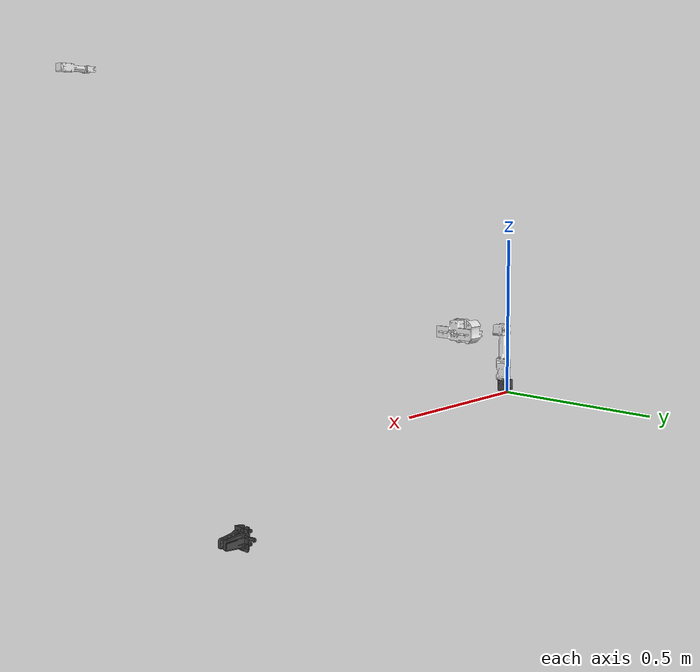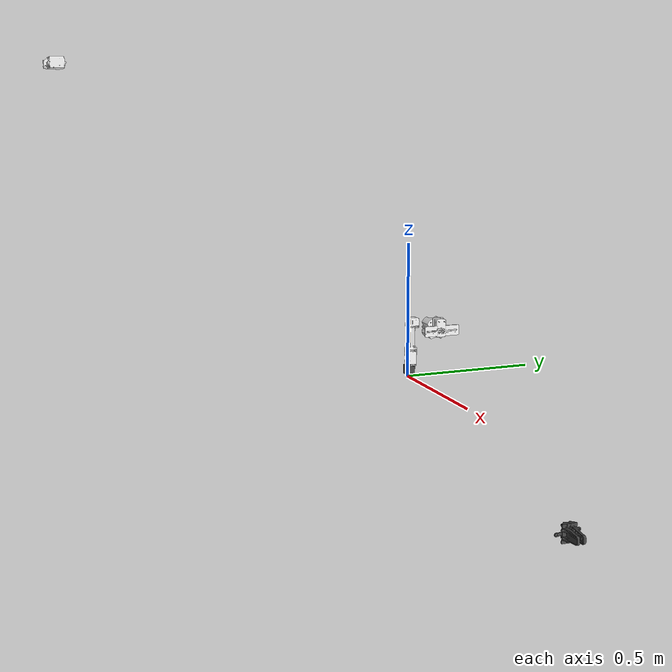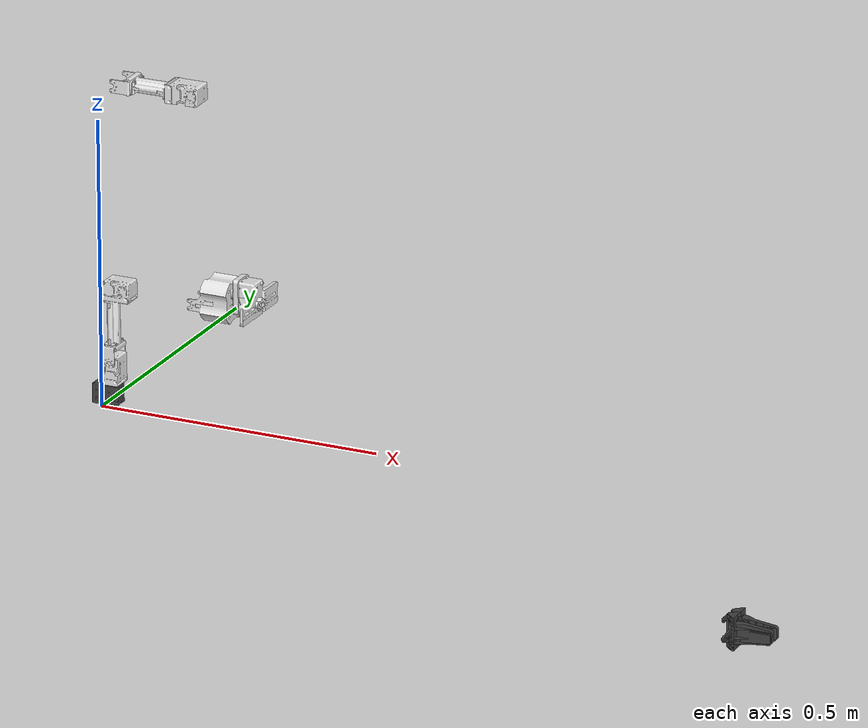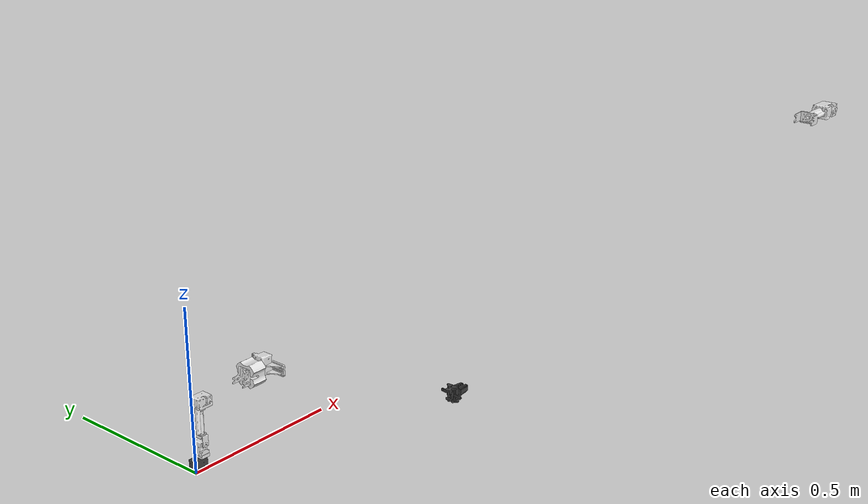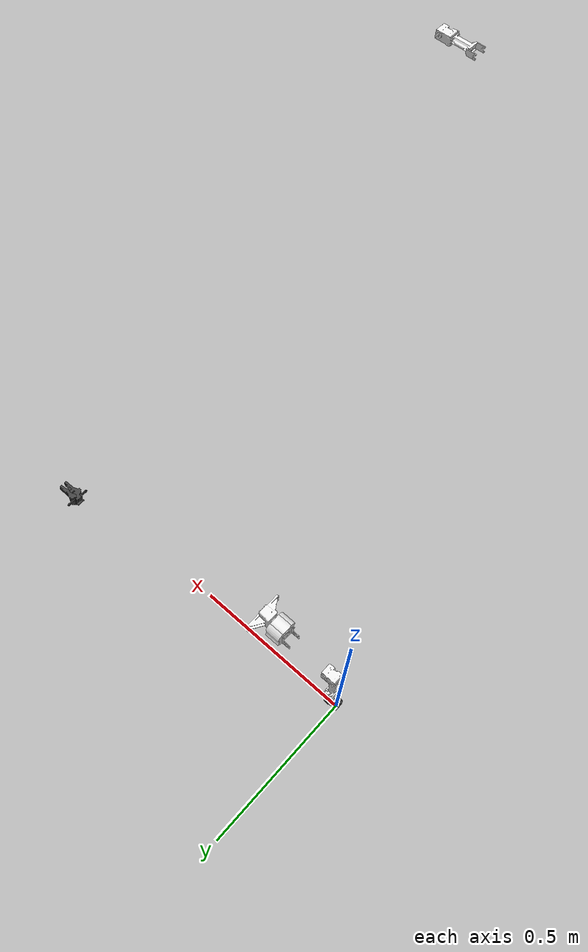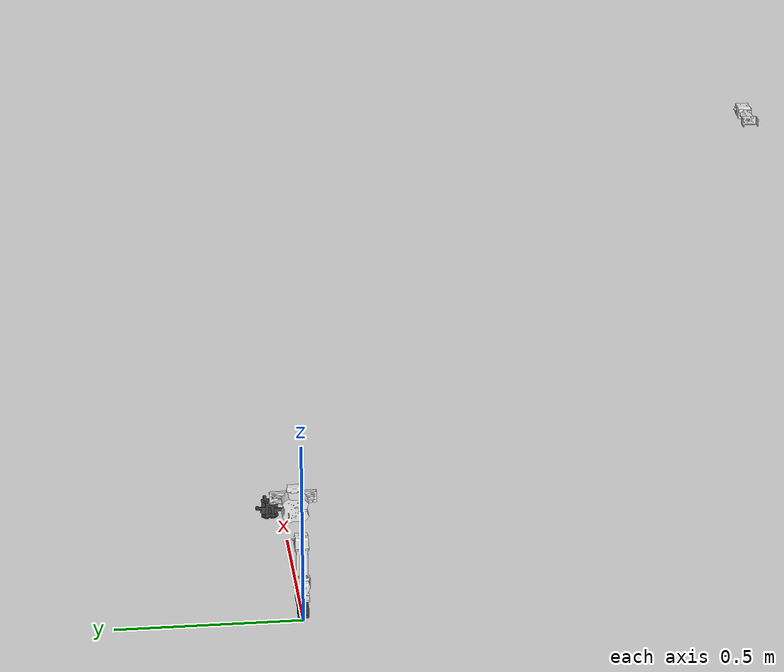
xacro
<?xml version="1.0" encoding="utf-8"?>
<robot
  name="Complete Arm Assembly"
  xmlns:xacro="http://www.ros.org/wiki/xacro">

  <!-- ===== Finger joint position properties ===== -->
  <!-- z offset relative to end_effector frame: world_finger_z - ee_world_z = 0 -->
  <xacro:property name="ee_world_z"     value="0.0005"/>  <!-- from joint_5 z -->
  <xacro:property name="world_finger_z" value="0.0005"/>  <!-- fingers sit at same z as end_effector -->
  <xacro:property name="finger_local_z" value="${world_finger_z - ee_world_z}"/>

  <!-- Right finger x/y offsets (unchanged) -->
  <xacro:property name="rf_x" value="1.2858"/>
  <xacro:property name="rf_y" value="-1.1091"/>

  <!-- Left finger x/y offsets (unchanged) -->
  <xacro:property name="lf_x" value="1.3371"/>
  <xacro:property name="lf_y" value="-1.1093"/>
  <link
    name="base_link">
    <inertial>
      <origin
        xyz="0.0122317361715243 0.000234343346485964 0.027977615168535"
        rpy="0 0 0" />
      <mass
        value="0.0426185203491502" />
      <inertia
        ixx="6.76355398275022E-06"
        ixy="-4.08417702652901E-12"
        ixz="-1.08324747788106E-07"
        iyy="1.186471207475E-05"
        iyz="-1.16335668381936E-11"
        izz="1.04659692792085E-05" />
    </inertial>
    <visual>
      <origin
        xyz="0 0 0"
        rpy="0 0 0" />
      <geometry>
        <mesh
          filename="package://Complete Arm Assembly/meshes/base_link.STL" />
      </geometry>
      <material
        name="">
        <color
          rgba="0.250980392156863 0.250980392156863 0.250980392156863 1" />
      </material>
    </visual>
    <collision>
      <origin
        xyz="0 0 0"
        rpy="0 0 0" />
      <geometry>
        <mesh
          filename="package://Complete Arm Assembly/meshes/base_link.STL" />
      </geometry>
    </collision>
  </link>
  <link
    name="link_1">
    <inertial>
      <origin
        xyz="-0.666380217100272 -0.84855895940617 -1.31214318818171"
        rpy="0 0 0" />
      <mass
        value="0.0451525514641292" />
      <inertia
        ixx="1.25218328608314E-05"
        ixy="6.69659767784837E-12"
        ixz="3.83286954310679E-11"
        iyy="7.47176371292313E-06"
        iyz="6.35306176471457E-09"
        izz="1.07173661089209E-05" />
    </inertial>
    <visual>
      <origin
        xyz="0 0 0"
        rpy="0 0 0" />
      <geometry>
        <mesh
          filename="package://Complete Arm Assembly/meshes/link_1.STL" />
      </geometry>
      <material
        name="">
        <color
          rgba="0.894117647058823 0.894117647058823 0.894117647058823 1" />
      </material>
    </visual>
    <collision>
      <origin
        xyz="0 0 0"
        rpy="0 0 0" />
      <geometry>
        <mesh
          filename="package://Complete Arm Assembly/meshes/link_1.STL" />
      </geometry>
    </collision>
  </link>
  <joint
    name="joint_1"
    type="revolute">
    <origin
      xyz="0.69033 -1.3112 0.92243"
      rpy="1.5708 0 0" />
    <parent
      link="base_link" />
    <child
      link="link_1" />
    <axis
      xyz="0 1 0" />
    <limit
      lower="0"
      upper="0"
      effort="0"
      velocity="0" />
  </joint>
  <link
    name="link_2">
    <inertial>
      <origin
        xyz="-0.657818849647841 -0.688862150971421 -1.31192218568486"
        rpy="0 0 0" />
      <mass
        value="0.067681645688669" />
      <inertia
        ixx="2.06796748549735E-05"
        ixy="2.87624368311378E-11"
        ixz="6.34388257183037E-09"
        iyy="1.65560858652843E-05"
        iyz="-4.60294479835768E-11"
        izz="2.27201206167373E-05" />
    </inertial>
    <visual>
      <origin
        xyz="0 0 0"
        rpy="0 0 0" />
      <geometry>
        <mesh
          filename="package://Complete Arm Assembly/meshes/link_2.STL" />
      </geometry>
      <material
        name="">
        <color
          rgba="0.894117647058823 0.894117647058823 0.894117647058823 1" />
      </material>
    </visual>
    <collision>
      <origin
        xyz="0 0 0"
        rpy="0 0 0" />
      <geometry>
        <mesh
          filename="package://Complete Arm Assembly/meshes/link_2.STL" />
      </geometry>
    </collision>
  </link>
  <joint
    name="joint_2"
    type="revolute">
    <origin
      xyz="0 -0.041995 0"
      rpy="0 0 0" />
    <parent
      link="link_1" />
    <child
      link="link_2" />
    <axis
      xyz="0 0 1" />
    <limit
      lower="0"
      upper="0"
      effort="0"
      velocity="0" />
  </joint>
  <link
    name="link_3">
    <inertial>
      <origin
        xyz="-0.876430946447304 -0.489951623789659 1.31196572001177"
        rpy="0 0 0" />
      <mass
        value="0.0616267578939116" />
      <inertia
        ixx="1.85838494550151E-05"
        ixy="-2.98586314510945E-11"
        ixz="3.95259008782377E-11"
        iyy="1.02605602568643E-05"
        iyz="-6.3527928399711E-09"
        izz="1.54040163656297E-05" />
    </inertial>
    <visual>
      <origin
        xyz="0 0 0"
        rpy="0 0 0" />
      <geometry>
        <mesh
          filename="package://Complete Arm Assembly/meshes/link_3.STL" />
      </geometry>
      <material
        name="">
        <color
          rgba="0.894117647058823 0.894117647058823 0.894117647058823 1" />
      </material>
    </visual>
    <collision>
      <origin
        xyz="0 0 0"
        rpy="0 0 0" />
      <geometry>
        <mesh
          filename="package://Complete Arm Assembly/meshes/link_3.STL" />
      </geometry>
    </collision>
  </link>
  <joint
    name="joint_3"
    type="revolute">
    <origin
      xyz="-0.0585 0.2105 0"
      rpy="3.1416 0 1.5708" />
    <parent
      link="link_2" />
    <child
      link="link_3" />
    <axis
      xyz="0 0 1" />
    <limit
      lower="0"
      upper="0"
      effort="0"
      velocity="0" />
  </joint>
  <link
    name="link_4">
    <inertial>
      <origin
        xyz="-0.467648435844624 -0.65413414341234 -1.31168658575783"
        rpy="0 0 0" />
      <mass
        value="0.181115636338247" />
      <inertia
        ixx="0.000125082991280758"
        ixy="-1.91715182419283E-07"
        ixz="-3.18809492114017E-07"
        iyy="7.52710720340047E-05"
        iyz="2.81456890255508E-09"
        izz="7.57487396509343E-05" />
    </inertial>
    <visual>
      <origin
        xyz="0 0 0"
        rpy="0 0 0" />
      <geometry>
        <mesh
          filename="package://Complete Arm Assembly/meshes/link_4.STL" />
      </geometry>
      <material
        name="">
        <color
          rgba="0.894117647058823 0.894117647058823 0.894117647058823 1" />
      </material>
    </visual>
    <collision>
      <origin
        xyz="0 0 0"
        rpy="0 0 0" />
      <geometry>
        <mesh
          filename="package://Complete Arm Assembly/meshes/link_4.STL" />
      </geometry>
    </collision>
  </link>
  <joint
    name="joint_4"
    type="revolute">
    <origin
      xyz="-0.2105 0.0585 0"
      rpy="3.1416 0 1.5708" />
    <parent
      link="link_3" />
    <child
      link="link_4" />
    <axis
      xyz="0 0 1" />
    <limit
      lower="0"
      upper="0"
      effort="0"
      velocity="0" />
  </joint>
  <link
    name="end_effector">
    <inertial>
      <origin
        xyz="1.31147925783259 -0.893456429266982 -0.634772750341023"
        rpy="0 0 0" />
      <mass
        value="0.0448261455614486" />
      <inertia
        ixx="1.48346334805845E-05"
        ixy="1.04956819868274E-07"
        ixz="-4.14245299868945E-09"
        iyy="1.38058356627429E-05"
        iyz="6.8125225925506E-07"
        izz="2.35574906110657E-05" />
    </inertial>
    <visual>
      <origin
        xyz="0 0 0"
        rpy="0 0 0" />
      <geometry>
        <mesh
          filename="package://Complete Arm Assembly/meshes/end_effector.STL" />
      </geometry>
      <material
        name="">
        <color
          rgba="0.894117647058823 0.894117647058823 0.894117647058823 1" />
      </material>
    </visual>
    <collision>
      <origin
        xyz="0 0 0"
        rpy="0 0 0" />
      <geometry>
        <mesh
          filename="package://Complete Arm Assembly/meshes/end_effector.STL" />
      </geometry>
    </collision>
  </link>
  <joint
    name="joint_5"
    type="revolute">
    <origin
      xyz="0.2223 0.24575 0.0005"
      rpy="0 1.5708 0" />
    <parent
      link="link_4" />
    <child
      link="end_effector" />
    <axis
      xyz="1 0 0" />
    <limit
      lower="0"
      upper="0"
      effort="0"
      velocity="0" />
  </joint>
  <link
    name="right_finger">
    <inertial>
      <origin
        xyz="0.239118086547263 0.21062408027815 0.0195971430491008"
        rpy="0 0 0" />
      <mass
        value="0.0287713290324179" />
      <inertia
        ixx="7.70020810555727E-06"
        ixy="-3.2994606274732E-09"
        ixz="2.17678939286046E-07"
        iyy="8.54305538090716E-06"
        iyz="3.07283827617155E-08"
        izz="1.30617201704657E-05" />
    </inertial>
    <visual>
      <origin
        xyz="0 0 0"
        rpy="0 0 0" />
      <geometry>
        <mesh
          filename="package://Complete Arm Assembly/meshes/right_finger.STL" />
      </geometry>
      <material
        name="">
        <color
          rgba="0.250980392156863 0.250980392156863 0.250980392156863 1" />
      </material>
    </visual>
    <collision>
      <origin
        xyz="0 0 0"
        rpy="0 0 0" />
      <geometry>
        <mesh
          filename="package://Complete Arm Assembly/meshes/right_finger.STL" />
      </geometry>
    </collision>
  </link>
  <joint
    name="right_finger_joint"
    type="prismatic">
    <origin
      xyz="${rf_x} ${rf_y} ${finger_local_z}"
      rpy="3.1416 -1.5708 0" />
    <parent
      link="end_effector" />
    <child
      link="right_finger" />
    <axis
      xyz="1 0 0" />
    <limit
      lower="0"
      upper="0"
      effort="0"
      velocity="0" />
  </joint>
  <link
    name="left_finger">
    <inertial>
      <origin
        xyz="0.23911808655568 0.210459665073558 -0.0195969777282517"
        rpy="0 0 0" />
      <mass
        value="0.028771329032418" />
      <inertia
        ixx="7.70020810574429E-06"
        ixy="3.29946061416615E-09"
        ixz="-2.17678941588927E-07"
        iyy="8.54294598243523E-06"
        iyz="3.12650719972031E-08"
        izz="1.3061829568751E-05" />
    </inertial>
    <visual>
      <origin
        xyz="0 0 0"
        rpy="0 0 0" />
      <geometry>
        <mesh
          filename="package://Complete Arm Assembly/meshes/left_finger.STL" />
      </geometry>
      <material
        name="">
        <color
          rgba="0.250980392156863 0.250980392156863 0.250980392156863 1" />
      </material>
    </visual>
    <collision>
      <origin
        xyz="0 0 0"
        rpy="0 0 0" />
      <geometry>
        <mesh
          filename="package://Complete Arm Assembly/meshes/left_finger.STL" />
      </geometry>
    </collision>
  </link>
  <joint
    name="left_finger_joint"
    type="prismatic">
    <origin
      xyz="${lf_x} ${lf_y} ${finger_local_z}"
      rpy="3.1416 -1.5708 0" />
    <parent
      link="end_effector" />
    <child
      link="left_finger" />
    <axis
      xyz="1 0 0" />
    <limit
      lower="0"
      upper="0"
      effort="0"
      velocity="0" />
    <mimic
      joint="right_finger_joint"
      multiplier="-1"
      offset="0" />
  </joint>
</robot>
